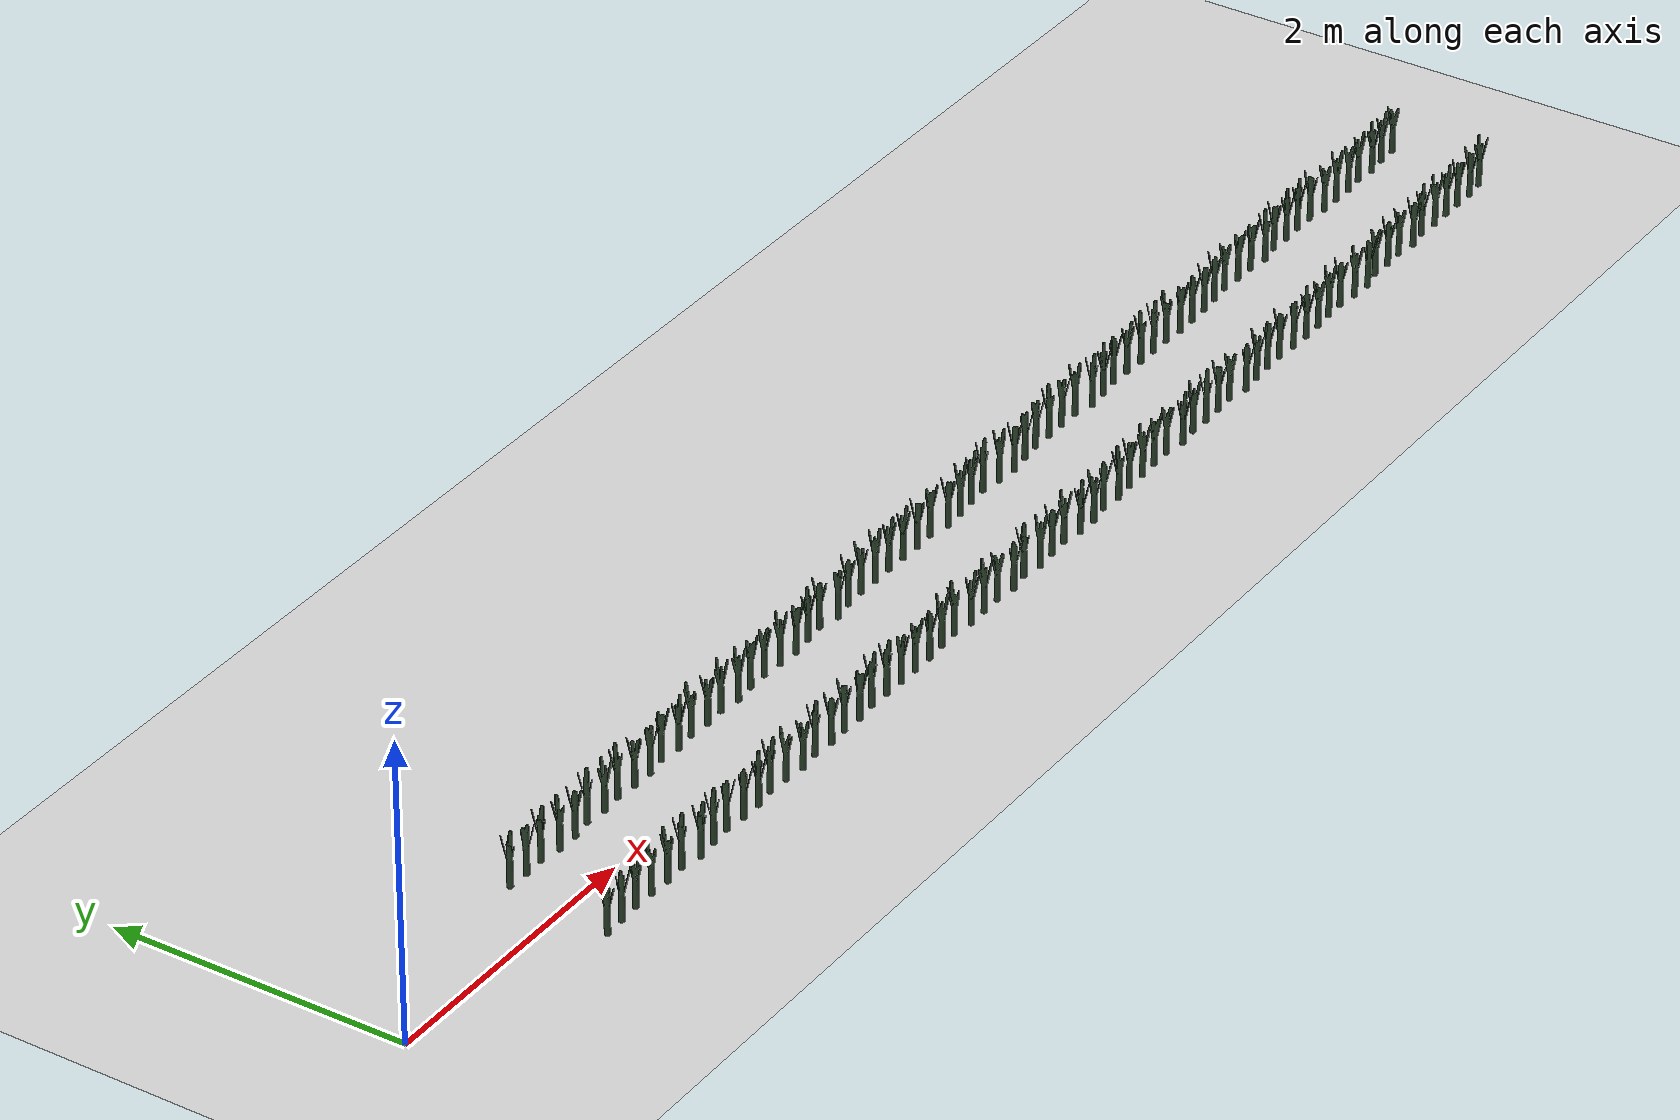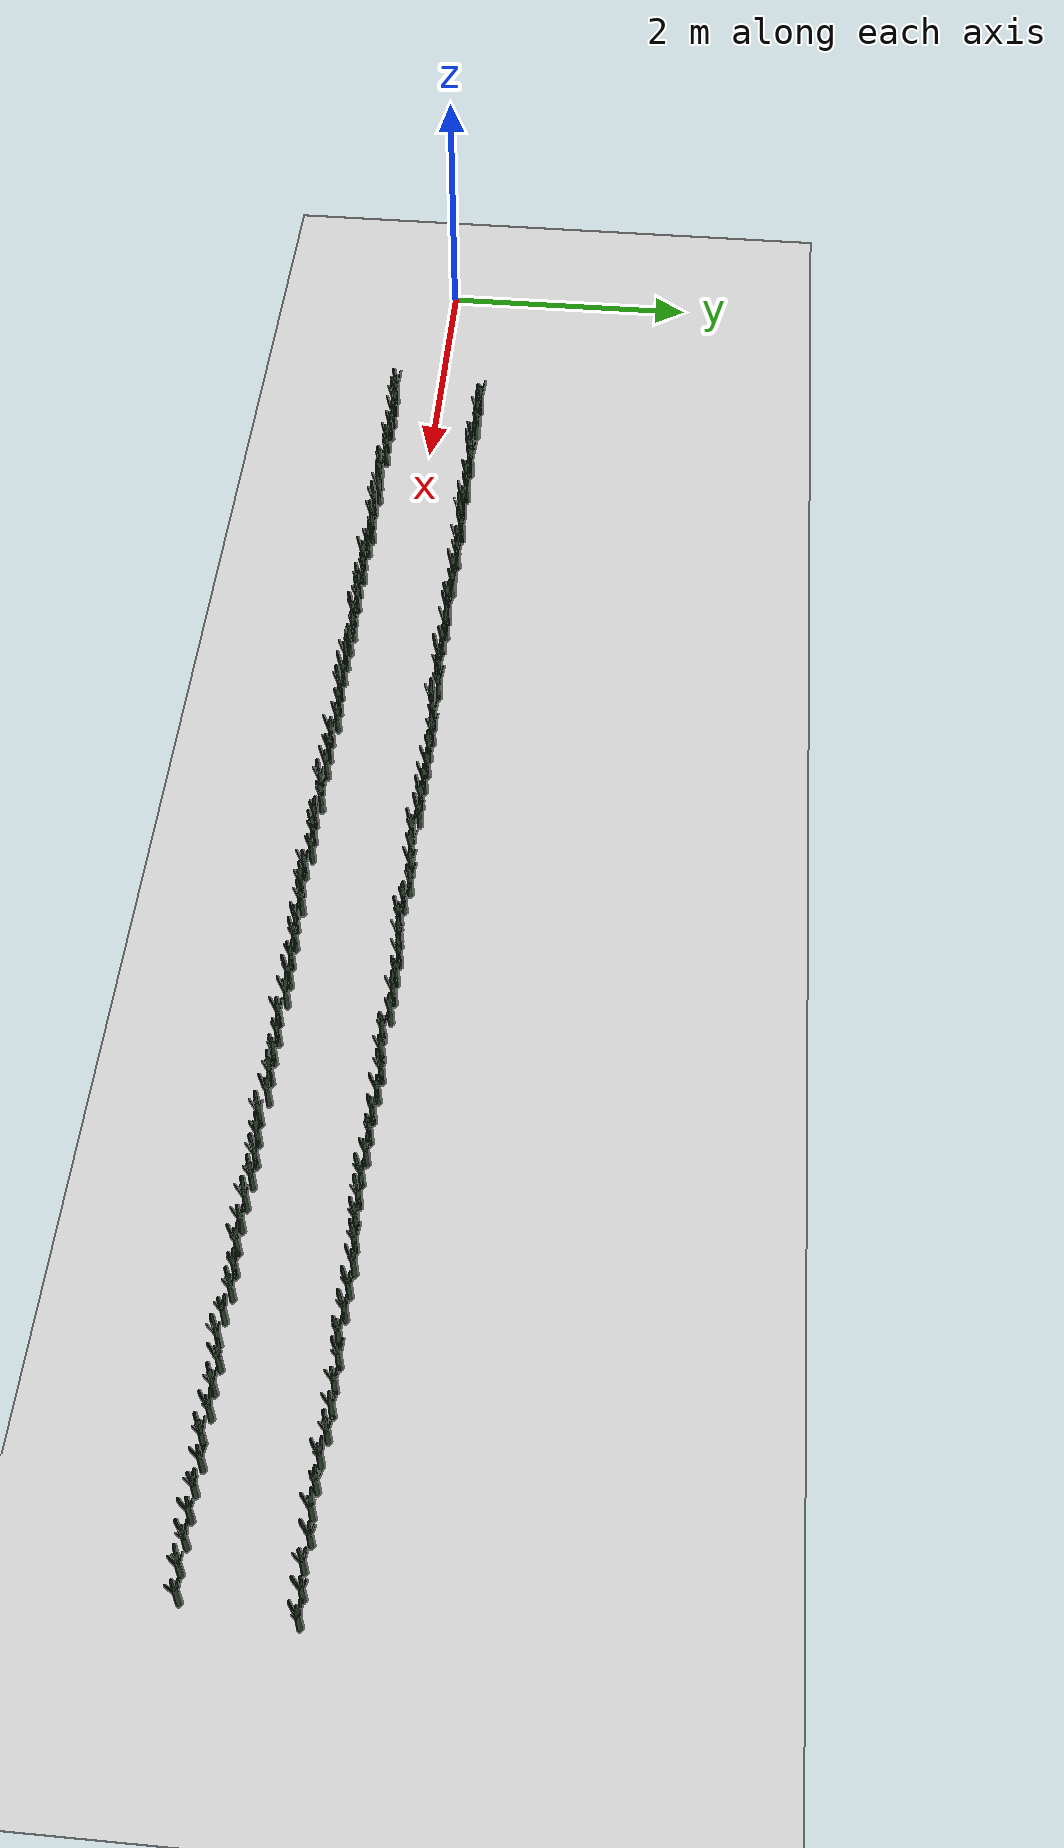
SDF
<sdf version="1.6">
 <world name="default">
  <light name="sun" type="directional">
   <pose>0 0 10 0 -0 0</pose>
   <diffuse>0.5 0.5 0.5 1</diffuse>
   <specular>0.1 0.1 0.1 1</specular>
   <attenuation>
    <range>1000</range>
    <constant>0.9</constant>
    <linear>0.01</linear>
    <quadratic>0.001</quadratic>
   </attenuation>
   <direction>0.9 0.5 -1</direction>
  </light>
  <scene><background>130 200 255 1</background><ambient>130 140 140 1</ambient></scene>
  <include><uri>model://dirt_plane</uri></include>
  <include><uri>model://Leek</uri><pose>1.500000 0.364712 0.15 0 0 132.410970</pose><static>0</static></include>
  <include><uri>model://Leek</uri><pose>1.650000 0.358756 0.15 0 0 78.802763</pose><static>0</static></include>
  <include><uri>model://Leek</uri><pose>1.800000 0.365396 0.15 0 0 138.566337</pose><static>0</static></include>
  <include><uri>model://Leek</uri><pose>1.950000 0.339637 0.15 0 0 -93.264644</pose><static>0</static></include>
  <include><uri>model://Leek</uri><pose>2.100000 0.339781 0.15 0 0 -91.966616</pose><static>0</static></include>
  <include><uri>model://Leek</uri><pose>2.250000 0.361933 0.15 0 0 107.399655</pose><static>0</static></include>
  <include><uri>model://Leek</uri><pose>2.400000 0.344344 0.15 0 0 -50.907005</pose><static>0</static></include>
  <include><uri>model://Leek</uri><pose>2.550000 0.360567 0.15 0 0 95.104779</pose><static>0</static></include>
  <include><uri>model://Leek</uri><pose>2.700000 0.345394 0.15 0 0 -41.450116</pose><static>0</static></include>
  <include><uri>model://Leek</uri><pose>2.850000 0.340601 0.15 0 0 -84.591697</pose><static>0</static></include>
  <include><uri>model://Leek</uri><pose>3.000000 0.367202 0.15 0 0 154.820325</pose><static>0</static></include>
  <include><uri>model://Leek</uri><pose>3.150000 0.347071 0.15 0 0 -26.360851</pose><static>0</static></include>
  <include><uri>model://Leek</uri><pose>3.300000 0.363411 0.15 0 0 120.696756</pose><static>0</static></include>
  <include><uri>model://Leek</uri><pose>3.450000 0.348889 0.15 0 0 -9.998882</pose><static>0</static></include>
  <include><uri>model://Leek</uri><pose>3.600000 0.359716 0.15 0 0 87.440146</pose><static>0</static></include>
  <include>
   <uri>model://Leek</uri>
   <pose>3.750000 0.338067 0.15 0 0 -107.392776</pose>
   <static>0</static>
  </include>
  <include><uri>model://Leek</uri><pose>3.900000 0.353959 0.15 0 0 35.631750</pose><static>0</static></include>
  <include><uri>model://Leek</uri><pose>4.050000 0.357318 0.15 0 0 65.862968</pose><static>0</static></include>
  <include><uri>model://Leek</uri><pose>4.200000 0.346458 0.15 0 0 -31.876660</pose><static>0</static></include>
  <include>
   <uri>model://Leek</uri>
   <pose>4.350000 0.334402 0.15 0 0 -140.382680</pose>
   <static>0</static>
  </include>
  <include><uri>model://Leek</uri><pose>4.500000 0.349895 0.15 0 0 -0.947142</pose><static>0</static></include>
  <include><uri>model://Leek</uri><pose>4.650000 0.366975 0.15 0 0 152.771657</pose><static>0</static></include>
  <include>
   <uri>model://Leek</uri>
   <pose>4.800000 0.334306 0.15 0 0 -141.247237</pose>
   <static>0</static>
  </include>
  <include><uri>model://Leek</uri><pose>4.950000 0.362100 0.15 0 0 108.899410</pose><static>0</static></include>
  <include><uri>model://Leek</uri><pose>5.100000 0.369739 0.15 0 0 177.650162</pose><static>0</static></include>
  <include><uri>model://Leek</uri><pose>5.250000 0.364657 0.15 0 0 131.909124</pose><static>0</static></include>
  <include><uri>model://Leek</uri><pose>5.400000 0.367285 0.15 0 0 155.562843</pose><static>0</static></include>
  <include><uri>model://Leek</uri><pose>5.550000 0.363798 0.15 0 0 124.182146</pose><static>0</static></include>
  <include><uri>model://Leek</uri><pose>5.700000 0.357941 0.15 0 0 71.467043</pose><static>0</static></include>
  <include><uri>model://Leek</uri><pose>5.850000 0.365124 0.15 0 0 136.112443</pose><static>0</static></include>
  <include>
   <uri>model://Leek</uri>
   <pose>6.000000 0.331406 0.15 0 0 -167.343022</pose>
   <static>0</static>
  </include>
  <include><uri>model://Leek</uri><pose>6.150000 0.340207 0.15 0 0 -88.140028</pose><static>0</static></include>
  <include><uri>model://Leek</uri><pose>6.300000 0.357510 0.15 0 0 67.586067</pose><static>0</static></include>
  <include><uri>model://Leek</uri><pose>6.450000 0.369591 0.15 0 0 176.318573</pose><static>0</static></include>
  <include><uri>model://Leek</uri><pose>6.600000 0.345111 0.15 0 0 -44.005223</pose><static>0</static></include>
  <include>
   <uri>model://Leek</uri>
   <pose>6.750000 0.333501 0.15 0 0 -148.493371</pose>
   <static>0</static>
  </include>
  <include><uri>model://Leek</uri><pose>6.900000 0.352465 0.15 0 0 22.188137</pose><static>0</static></include>
  <include><uri>model://Leek</uri><pose>7.050000 0.368515 0.15 0 0 166.638925</pose><static>0</static></include>
  <include><uri>model://Leek</uri><pose>7.200000 0.366137 0.15 0 0 145.235512</pose><static>0</static></include>
  <include><uri>model://Leek</uri><pose>7.350000 0.367810 0.15 0 0 160.293659</pose><static>0</static></include>
  <include><uri>model://Leek</uri><pose>7.500000 0.365349 0.15 0 0 138.138303</pose><static>0</static></include>
  <include>
   <uri>model://Leek</uri>
   <pose>7.650000 0.331886 0.15 0 0 -163.028765</pose>
   <static>0</static>
  </include>
  <include><uri>model://Leek</uri><pose>7.800000 0.344993 0.15 0 0 -45.063184</pose><static>0</static></include>
  <include><uri>model://Leek</uri><pose>7.950000 0.364382 0.15 0 0 129.438092</pose><static>0</static></include>
  <include><uri>model://Leek</uri><pose>8.100000 0.357503 0.15 0 0 67.527869</pose><static>0</static></include>
  <include><uri>model://Leek</uri><pose>8.250000 0.347296 0.15 0 0 -24.337997</pose><static>0</static></include>
  <include><uri>model://Leek</uri><pose>8.400000 0.345859 0.15 0 0 -37.266686</pose><static>0</static></include>
  <include><uri>model://Leek</uri><pose>8.550000 0.345248 0.15 0 0 -42.771620</pose><static>0</static></include>
  <include>
   <uri>model://Leek</uri>
   <pose>8.700000 0.333690 0.15 0 0 -146.794138</pose>
   <static>0</static>
  </include>
  <include>
   <uri>model://Leek</uri>
   <pose>8.850000 0.337846 0.15 0 0 -109.387589</pose>
   <static>0</static>
  </include>
  <include><uri>model://Leek</uri><pose>9.000000 0.339077 0.15 0 0 -98.306561</pose><static>0</static></include>
  <include><uri>model://Leek</uri><pose>9.150000 0.354415 0.15 0 0 39.735189</pose><static>0</static></include>
  <include><uri>model://Leek</uri><pose>9.300000 0.369148 0.15 0 0 172.334678</pose><static>0</static></include>
  <include><uri>model://Leek</uri><pose>9.450000 0.359535 0.15 0 0 85.810540</pose><static>0</static></include>
  <include><uri>model://Leek</uri><pose>9.600000 0.354635 0.15 0 0 41.713330</pose><static>0</static></include>
  <include>
   <uri>model://Leek</uri>
   <pose>9.750000 0.337510 0.15 0 0 -112.407903</pose>
   <static>0</static>
  </include>
  <include><uri>model://Leek</uri><pose>9.900000 0.361424 0.15 0 0 102.816703</pose><static>0</static></include>
  <include><uri>model://Leek</uri><pose>10.050000 0.356863 0.15 0 0 61.767415</pose><static>0</static></include>
  <include>
   <uri>model://Leek</uri>
   <pose>10.200000 0.362431 0.15 0 0 111.875668</pose>
   <static>0</static>
  </include>
  <include><uri>model://Leek</uri><pose>10.350000 0.357881 0.15 0 0 70.933466</pose><static>0</static></include>
  <include>
   <uri>model://Leek</uri>
   <pose>10.500000 0.338425 0.15 0 0 -104.171083</pose>
   <static>0</static>
  </include>
  <include>
   <uri>model://Leek</uri>
   <pose>10.650000 0.338110 0.15 0 0 -107.008217</pose>
   <static>0</static>
  </include>
  <include>
   <uri>model://Leek</uri>
   <pose>10.800000 0.334269 0.15 0 0 -141.576233</pose>
   <static>0</static>
  </include>
  <include>
   <uri>model://Leek</uri>
   <pose>10.950000 0.348409 0.15 0 0 -14.315476</pose>
   <static>0</static>
  </include>
  <include>
   <uri>model://Leek</uri>
   <pose>11.100000 0.331747 0.15 0 0 -164.277842</pose>
   <static>0</static>
  </include>
  <include>
   <uri>model://Leek</uri>
   <pose>11.250000 0.348427 0.15 0 0 -14.158112</pose>
   <static>0</static>
  </include>
  <include><uri>model://Leek</uri><pose>11.400000 0.352383 0.15 0 0 21.446109</pose><static>0</static></include>
  <include><uri>model://Leek</uri><pose>1.426600 -0.345604 0.15 0 0 39.566147</pose><static>0</static></include>
  <include><uri>model://Leek</uri><pose>1.576600 -0.339813 0.15 0 0 91.685314</pose><static>0</static></include>
  <include>
   <uri>model://Leek</uri>
   <pose>1.726600 -0.332014 0.15 0 0 161.877549</pose>
   <static>0</static>
  </include>
  <include>
   <uri>model://Leek</uri>
   <pose>1.876600 -0.333113 0.15 0 0 151.979222</pose>
   <static>0</static>
  </include>
  <include><uri>model://Leek</uri><pose>2.026600 -0.343579 0.15 0 0 57.785804</pose><static>0</static></include>
  <include>
   <uri>model://Leek</uri>
   <pose>2.176600 -0.333189 0.15 0 0 151.299160</pose>
   <static>0</static>
  </include>
  <include>
   <uri>model://Leek</uri>
   <pose>2.326600 -0.363931 0.15 0 0 -125.379554</pose>
   <static>0</static>
  </include>
  <include><uri>model://Leek</uri><pose>2.476600 -0.347846 0.15 0 0 19.387704</pose><static>0</static></include>
  <include>
   <uri>model://Leek</uri>
   <pose>2.626600 -0.334251 0.15 0 0 141.737523</pose>
   <static>0</static>
  </include>
  <include>
   <uri>model://Leek</uri>
   <pose>2.776600 -0.351696 0.15 0 0 -15.265740</pose>
   <static>0</static>
  </include>
  <include>
   <uri>model://Leek</uri>
   <pose>2.926600 -0.352209 0.15 0 0 -19.881006</pose>
   <static>0</static>
  </include>
  <include>
   <uri>model://Leek</uri>
   <pose>3.076600 -0.330433 0.15 0 0 176.098768</pose>
   <static>0</static>
  </include>
  <include><uri>model://Leek</uri><pose>3.226600 -0.340069 0.15 0 0 89.382339</pose><static>0</static></include>
  <include>
   <uri>model://Leek</uri>
   <pose>3.376600 -0.357385 0.15 0 0 -66.468959</pose>
   <static>0</static>
  </include>
  <include><uri>model://Leek</uri><pose>3.526600 -0.340875 0.15 0 0 82.127150</pose><static>0</static></include>
  <include>
   <uri>model://Leek</uri>
   <pose>3.676600 -0.354661 0.15 0 0 -41.949427</pose>
   <static>0</static>
  </include>
  <include><uri>model://Leek</uri><pose>3.826600 -0.344905 0.15 0 0 45.850897</pose><static>0</static></include>
  <include>
   <uri>model://Leek</uri>
   <pose>3.976600 -0.353042 0.15 0 0 -27.376169</pose>
   <static>0</static>
  </include>
  <include>
   <uri>model://Leek</uri>
   <pose>4.126600 -0.336714 0.15 0 0 119.575630</pose>
   <static>0</static>
  </include>
  <include><uri>model://Leek</uri><pose>4.276600 -0.343690 0.15 0 0 56.793083</pose><static>0</static></include>
  <include><uri>model://Leek</uri><pose>4.426600 -0.348253 0.15 0 0 15.721738</pose><static>0</static></include>
  <include><uri>model://Leek</uri><pose>4.576600 -0.349525 0.15 0 0 4.274821</pose><static>0</static></include>
  <include><uri>model://Leek</uri><pose>4.726600 -0.350974 0.15 0 0 -8.767119</pose><static>0</static></include>
  <include><uri>model://Leek</uri><pose>4.876600 -0.339562 0.15 0 0 93.939249</pose><static>0</static></include>
  <include>
   <uri>model://Leek</uri>
   <pose>5.026600 -0.331031 0.15 0 0 170.725240</pose>
   <static>0</static>
  </include>
  <include>
   <uri>model://Leek</uri>
   <pose>5.176600 -0.355754 0.15 0 0 -51.788226</pose>
   <static>0</static>
  </include>
  <include><uri>model://Leek</uri><pose>5.326600 -0.349382 0.15 0 0 5.559537</pose><static>0</static></include>
  <include><uri>model://Leek</uri><pose>5.476600 -0.345513 0.15 0 0 40.382860</pose><static>0</static></include>
  <include>
   <uri>model://Leek</uri>
   <pose>5.626600 -0.366346 0.15 0 0 -147.114286</pose>
   <static>0</static>
  </include>
  <include><uri>model://Leek</uri><pose>5.776600 -0.341557 0.15 0 0 75.988266</pose><static>0</static></include>
  <include>
   <uri>model://Leek</uri>
   <pose>5.926600 -0.365395 0.15 0 0 -138.551962</pose>
   <static>0</static>
  </include>
  <include>
   <uri>model://Leek</uri>
   <pose>6.076600 -0.353249 0.15 0 0 -29.245252</pose>
   <static>0</static>
  </include>
  <include><uri>model://Leek</uri><pose>6.226600 -0.343086 0.15 0 0 62.224094</pose><static>0</static></include>
  <include>
   <uri>model://Leek</uri>
   <pose>6.376600 -0.368982 0.15 0 0 -170.837091</pose>
   <static>0</static>
  </include>
  <include>
   <uri>model://Leek</uri>
   <pose>6.526600 -0.369363 0.15 0 0 -174.267375</pose>
   <static>0</static>
  </include>
  <include><uri>model://Leek</uri><pose>6.676600 -0.344705 0.15 0 0 47.656931</pose><static>0</static></include>
  <include>
   <uri>model://Leek</uri>
   <pose>6.826600 -0.361074 0.15 0 0 -99.667419</pose>
   <static>0</static>
  </include>
  <include><uri>model://Leek</uri><pose>6.976600 -0.345549 0.15 0 0 40.060488</pose><static>0</static></include>
  <include><uri>model://Leek</uri><pose>7.126600 -0.347272 0.15 0 0 24.550006</pose><static>0</static></include>
  <include>
   <uri>model://Leek</uri>
   <pose>7.276600 -0.337662 0.15 0 0 111.043975</pose>
   <static>0</static>
  </include>
  <include>
   <uri>model://Leek</uri>
   <pose>7.426600 -0.334313 0.15 0 0 141.184315</pose>
   <static>0</static>
  </include>
  <include>
   <uri>model://Leek</uri>
   <pose>7.576600 -0.361315 0.15 0 0 -101.834244</pose>
   <static>0</static>
  </include>
  <include><uri>model://Leek</uri><pose>7.726600 -0.343762 0.15 0 0 56.143987</pose><static>0</static></include>
  <include><uri>model://Leek</uri><pose>7.876600 -0.347151 0.15 0 0 25.639538</pose><static>0</static></include>
  <include><uri>model://Leek</uri><pose>8.026600 -0.344216 0.15 0 0 52.057553</pose><static>0</static></include>
  <include>
   <uri>model://Leek</uri>
   <pose>8.176600 -0.335734 0.15 0 0 128.397722</pose>
   <static>0</static>
  </include>
  <include>
   <uri>model://Leek</uri>
   <pose>8.326600 -0.365662 0.15 0 0 -140.956493</pose>
   <static>0</static>
  </include>
  <include>
   <uri>model://Leek</uri>
   <pose>8.476600 -0.351917 0.15 0 0 -17.252270</pose>
   <static>0</static>
  </include>
  <include><uri>model://Leek</uri><pose>8.626600 -0.341203 0.15 0 0 79.168819</pose><static>0</static></include>
  <include><uri>model://Leek</uri><pose>8.776600 -0.340013 0.15 0 0 89.880665</pose><static>0</static></include>
  <include>
   <uri>model://Leek</uri>
   <pose>8.926600 -0.353110 0.15 0 0 -27.987395</pose>
   <static>0</static>
  </include>
  <include>
   <uri>model://Leek</uri>
   <pose>9.076600 -0.357094 0.15 0 0 -63.843877</pose>
   <static>0</static>
  </include>
  <include>
   <uri>model://Leek</uri>
   <pose>9.226600 -0.355983 0.15 0 0 -53.843148</pose>
   <static>0</static>
  </include>
  <include><uri>model://Leek</uri><pose>9.376600 -0.345150 0.15 0 0 43.650689</pose><static>0</static></include>
  <include><uri>model://Leek</uri><pose>9.526600 -0.340006 0.15 0 0 89.947665</pose><static>0</static></include>
  <include>
   <uri>model://Leek</uri>
   <pose>9.676600 -0.359848 0.15 0 0 -88.629060</pose>
   <static>0</static>
  </include>
  <include>
   <uri>model://Leek</uri>
   <pose>9.826600 -0.368433 0.15 0 0 -165.896255</pose>
   <static>0</static>
  </include>
  <include>
   <uri>model://Leek</uri>
   <pose>9.976600 -0.335017 0.15 0 0 134.845219</pose>
   <static>0</static>
  </include>
  <include>
   <uri>model://Leek</uri>
   <pose>10.126600 -0.342801 0.15 0 0 64.794101</pose>
   <static>0</static>
  </include>
  <include>
   <uri>model://Leek</uri>
   <pose>10.276600 -0.336439 0.15 0 0 122.048882</pose>
   <static>0</static>
  </include>
  <include>
   <uri>model://Leek</uri>
   <pose>10.426600 -0.356052 0.15 0 0 -54.465012</pose>
   <static>0</static>
  </include>
  <include>
   <uri>model://Leek</uri>
   <pose>10.576600 -0.331984 0.15 0 0 162.139594</pose>
   <static>0</static>
  </include>
  <include>
   <uri>model://Leek</uri>
   <pose>10.726600 -0.345180 0.15 0 0 43.379399</pose>
   <static>0</static>
  </include>
  <include>
   <uri>model://Leek</uri>
   <pose>10.876600 -0.343177 0.15 0 0 61.404588</pose>
   <static>0</static>
  </include>
  <include>
   <uri>model://Leek</uri>
   <pose>11.026600 -0.341358 0.15 0 0 77.777321</pose>
   <static>0</static>
  </include>
  <include>
   <uri>model://Leek</uri>
   <pose>11.176600 -0.348414 0.15 0 0 14.273029</pose>
   <static>0</static>
  </include>
  <include>
   <uri>model://Leek</uri>
   <pose>11.326600 -0.331250 0.15 0 0 168.745548</pose>
   <static>0</static>
  </include>
 </world>
</sdf>

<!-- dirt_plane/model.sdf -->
<sdf version="1.4">
<model name="dirt_plane">
  <static>true</static>
    <link name="link">
      <collision name="collision">
        <geometry>
          <plane>
            <normal>0 0 1</normal>
            <size>100 100</size>
          </plane>
        </geometry>
        <surface>
          <friction>
            <ode>
              <mu>100</mu>
              <mu2>50</mu2>
            </ode>
          </friction>
        </surface>
      </collision>
      <visual name="visual">
        <cast_shadows>false</cast_shadows>
        <geometry>
          <plane>
            <normal>0 0 1</normal>
            <size>100 100</size>
          </plane>
        </geometry>
        <material>
          <script>
            <uri>model://ground_plane/materials/scripts/my_ground_plane.material</uri>
            <uri>model://ground_plane/materials/textures</uri>
            <name>my_ground_plane/Dirt</name>
          </script>
        </material>
      </visual>
    </link>
  </model>
</sdf>

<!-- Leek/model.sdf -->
<sdf version='1.6'>
  <model name='Leek'>
    <link name='link'>
      <pose frame=''>0 0 0 0 -0 0</pose>
      <inertial>
        <mass>1</mass>
        <inertia>
          <ixx>0.145833</ixx>
          <ixy>0</ixy>
          <ixz>0</ixz>
          <iyy>0.145833</iyy>
          <iyz>0</iyz>
          <izz>0.125</izz>
        </inertia>
        <pose frame=''>0 0 0 0 -0 0</pose>
      </inertial>
      <self_collide>0</self_collide>
      <kinematic>0</kinematic>
      <gravity>1</gravity>
      <visual name='visual'>
        <geometry>
          <mesh>
            <uri>model://Leek/Poireau.dae</uri>
            <scale>1 1 1</scale>
          </mesh>
        </geometry>
        <material>
          <script>
            <name>Gazebo/Grey</name>
            <uri>file://media/materials/scripts/gazebo.material</uri>
          </script>
          <ambient>0.3 0.7 0.4 0</ambient>
          <diffuse>0.2 0.3 0.2 0</diffuse>
          <specular>0 0 0 1</specular>
          <emissive>0 0 0 1</emissive>
          <shader type='vertex'>
            <normal_map>__default__</normal_map>
          </shader>
        </material>
        <pose frame=''>0 0 -0.08 0 -0 0</pose>
        <cast_shadows>1</cast_shadows>
        <transparency>0</transparency>
      </visual>
      <collision name='collision'>
        <laser_retro>0</laser_retro>
        <max_contacts>10</max_contacts>
        <pose frame=''>0 0 0 0 -0 0</pose>
        <geometry>
          <cylinder>
            <radius>0.02</radius>
            <length>0.25</length>
          </cylinder>
        </geometry>
        <surface>
          <friction>
            <ode>
              <mu>1</mu>
              <mu2>1</mu2>
              <fdir1>0 0 0</fdir1>
              <slip1>0</slip1>
              <slip2>0</slip2>
            </ode>
            <torsional>
              <coefficient>1</coefficient>
              <patch_radius>0</patch_radius>
              <surface_radius>0</surface_radius>
              <use_patch_radius>1</use_patch_radius>
              <ode>
                <slip>0</slip>
              </ode>
            </torsional>
          </friction>
          <bounce>
            <restitution_coefficient>0</restitution_coefficient>
            <threshold>1e+06</threshold>
          </bounce>
          <contact>
            <collide_without_contact>0</collide_without_contact>
            <collide_without_contact_bitmask>1</collide_without_contact_bitmask>
            <collide_bitmask>1</collide_bitmask>
            <ode>
              <soft_cfm>0</soft_cfm>
              <soft_erp>0.2</soft_erp>
              <kp>1e+13</kp>
              <kd>1</kd>
              <max_vel>0.01</max_vel>
              <min_depth>0</min_depth>
            </ode>
            <bullet>
              <split_impulse>1</split_impulse>
              <split_impulse_penetration_threshold>-0.01</split_impulse_penetration_threshold>
              <soft_cfm>0</soft_cfm>
              <soft_erp>0.2</soft_erp>
              <kp>1e+13</kp>
              <kd>1</kd>
            </bullet>
          </contact>
        </surface>
      </collision>
    </link>
    <static>0</static>
    <allow_auto_disable>1</allow_auto_disable>
  </model>
</sdf>
